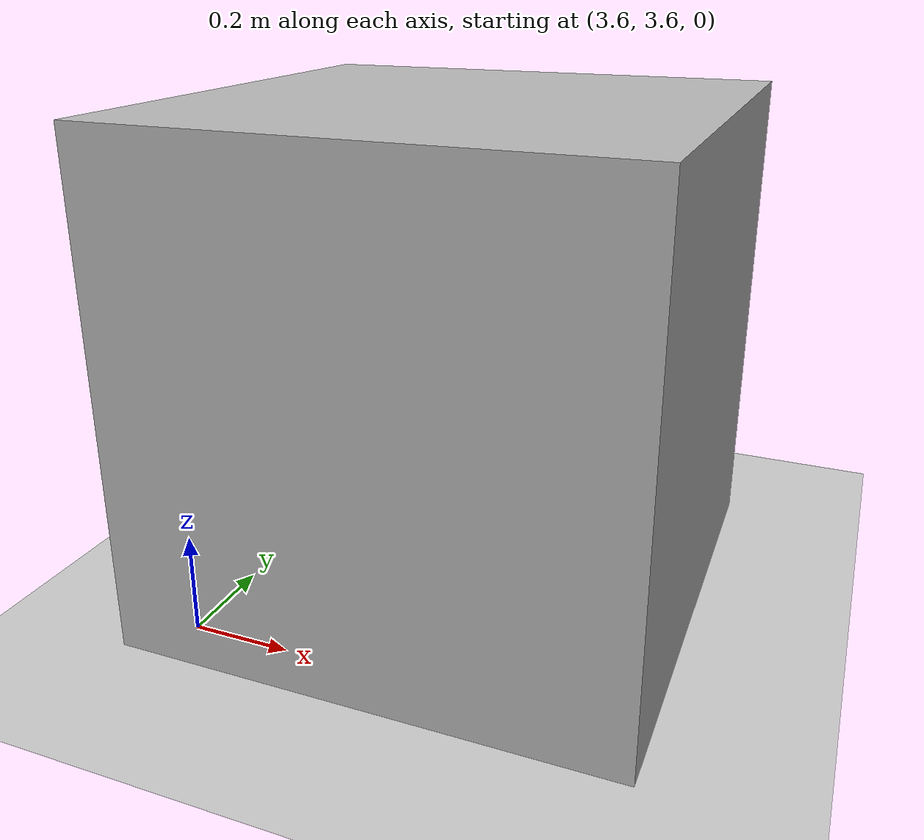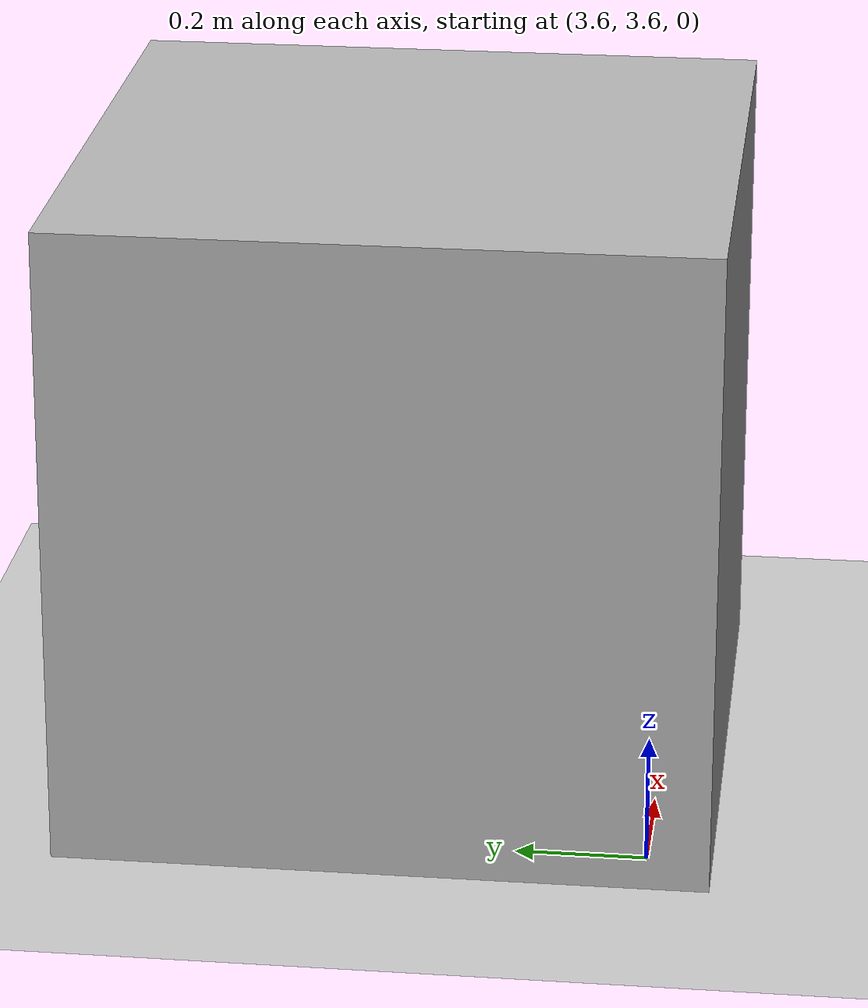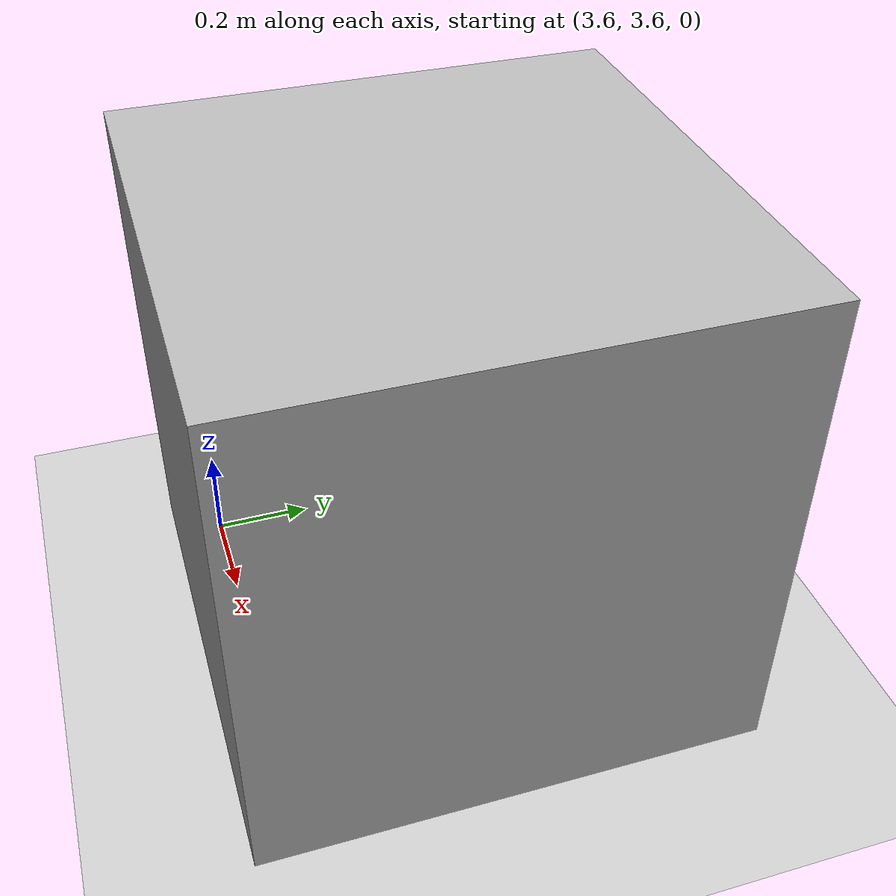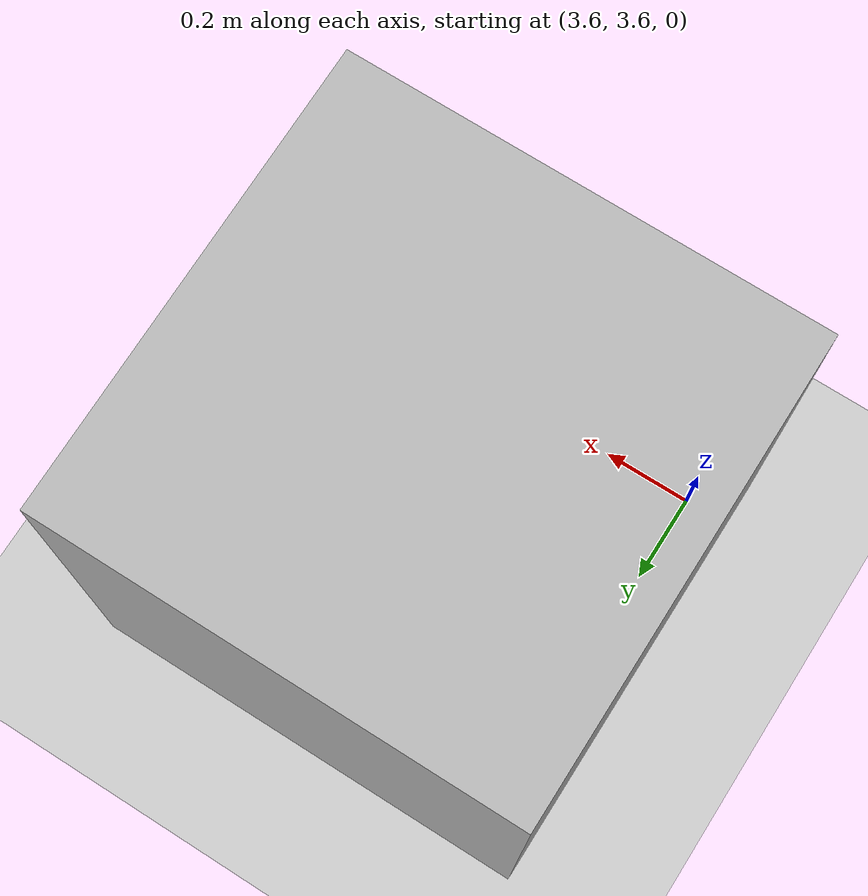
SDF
<?xml version="1.0" ?>
<sdf version="1.6">
  <world name="default">
    <!-- A global light source -->
    <include>
      <uri>model://sun</uri>
    </include>
    <!-- A ground plane -->
    <include>
      <uri>model://ground_plane</uri>
    </include>

    <gui>
      <camera name="user_camera">
        <track_visual>
          <static>true</static>
          <use_model_frame>false</use_model_frame>
          <name>box</name>
          <xyz>-3 0 1</xyz>
        </track_visual>
      </camera>
    </gui>

    <model name="box">
      <pose>4 4 0.5 0 0 0</pose>
      <link name="link">
        <kinematic>true</kinematic>
        <collision name="collision">
          <geometry>
            <box>
              <size>1 1 1</size>
            </box>
          </geometry>
          <surface>
            <friction>
              <ode>
                <mu>0.0</mu>
                <mu2>0.0</mu2>
              </ode>
            </friction>
          </surface>
        </collision>
        <visual name="visual">
          <geometry>
            <box>
              <size>1 1 1</size>
            </box>
          </geometry>
        </visual>
      </link>

      <!-- Apply a random velocity to the specified link-->
      <!-- In this example, we move a box around. A key property of the link
           is the frictionless surface -->
      <plugin name="random" filename="libRandomVelocityPlugin.so">

        <!-- Name of the link in this model that receives the velocity -->
        <link>link</link>

        <!-- Initial velocity that is applied to the link -->
        <initial_velocity>0 0.5 0</initial_velocity>

        <!-- Scaling factor that is used to compute a new velocity -->
        <velocity_factor>0.5</velocity_factor>

        <!-- Time, in seconds, between new velocities -->
        <update_period>5</update_period>

        <!-- Clamp the Z velocity value to zero. You can also clamp x and
             y values -->
        <min_z>0</min_z>
        <max_z>0</max_z>
      </plugin>
    </model>
  </world>
</sdf>
